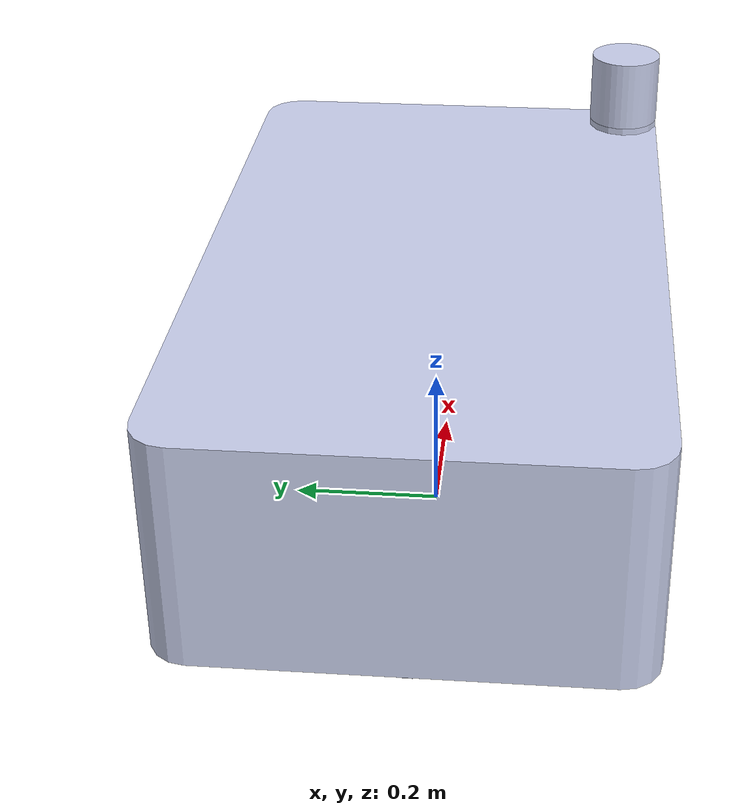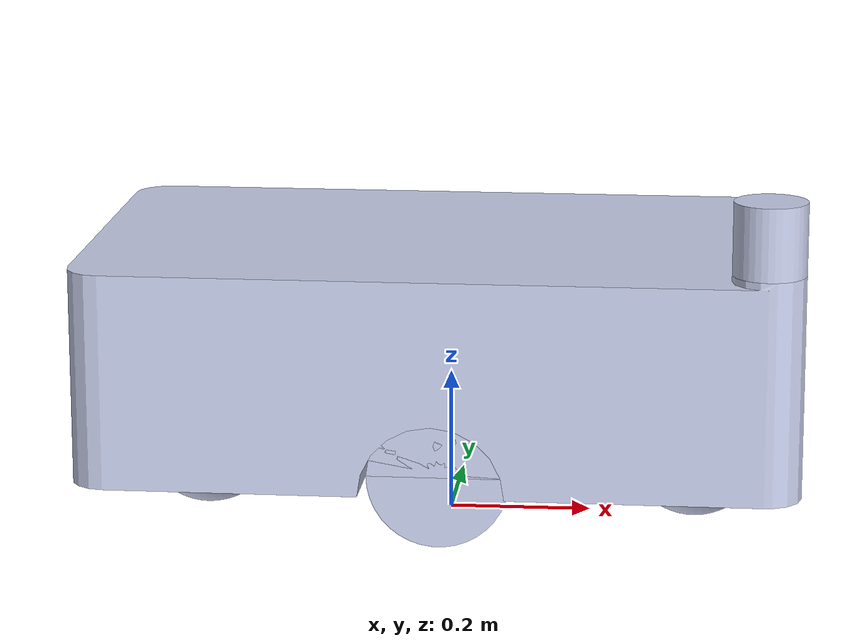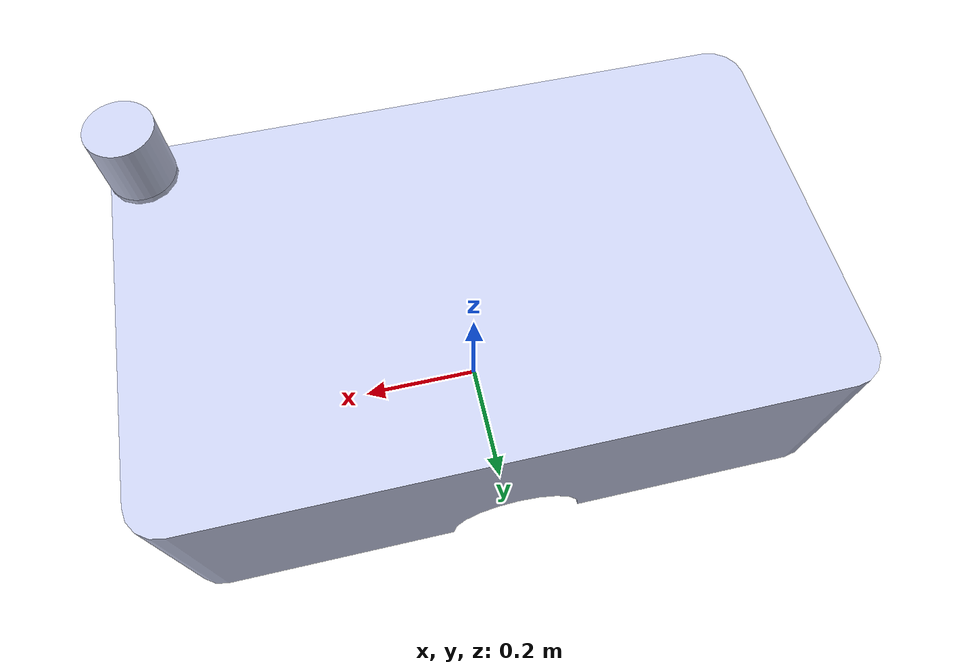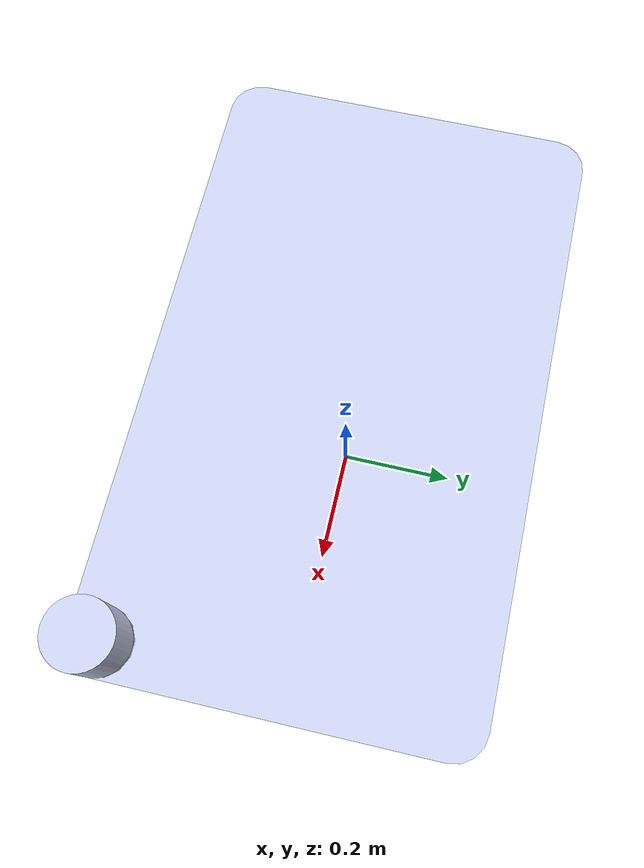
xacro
<?xml version="1.0" encoding="utf-8"?>
<robot name="my_agv" xmlns:xacro="http://www.ros.org/wiki/xacro">
  <xacro:include filename="$(find my_agv)/urdf/my_agv.gazebo.xacro"/>

  <link name="base_footprint"/>

  <joint name="base_joint" type="fixed">
    <parent link="base_footprint"/>
    <child link="base_link"/>
    <origin xyz="0.0 0.0 0.1" rpy="0 0 0"/>
  </joint>

  <link
    name="base_link">
    <inertial>
      <origin
        xyz="0.000205357488381168 -0.000114087493545167 0.154772210158345"
        rpy="0 0 0" />
      <mass
        value="172.104351448156" />
      <inertia
        ixx="6.3929434908259"
        ixy="0.00883169715336637"
        ixz="-0.0053094883604806"
        iyy="15.5817880289174"
        iyz="0.00294971575582209"
        izz="19.4765350338119" />
    </inertial>
    <visual>
      <origin
        xyz="0 0 0"
        rpy="0 0 0" />
      <geometry>
        <mesh
          filename="package://my_agv/meshes/base_link.STL" />
      </geometry>
      <material
        name="">
        <color
          rgba="0.792156862745098 0.819607843137255 0.933333333333333 1" />
      </material>
    </visual>
    <collision>
      <origin
        xyz="0 0 0"
        rpy="0 0 0" />
      <geometry>
        <mesh
          filename="package://my_agv/meshes/base_link.STL" />
      </geometry>
    </collision>
  </link>
  <link
    name="wheel_right_link">
    <inertial>
      <origin
        xyz="-1.94908591625968E-18 -7.34092456632638E-16 0.0500000000000003"
        rpy="0 0 0" />
      <mass
        value="3.14159265358979" />
      <inertia
        ixx="0.010471975511966"
        ixy="7.08713124779409E-34"
        ixz="4.70197740328895E-35"
        iyy="0.010471975511966"
        iyz="-3.74856813205645E-18"
        izz="0.015707963267949" />
    </inertial>
    <visual>
      <origin
        xyz="0 0 0"
        rpy="0 0 0" />
      <geometry>
        <mesh
          filename="package://my_agv/meshes/wheel_right_link.STL" />
      </geometry>
      <material
        name="">
        <color
          rgba="0.792156862745098 0.819607843137255 0.933333333333333 1" />
      </material>
    </visual>
    <collision>
      <origin
        xyz="0 0 0"
        rpy="0 0 0" />
      <geometry>
        <mesh
          filename="package://my_agv/meshes/wheel_right_link.STL" />
      </geometry>
    </collision>
  </link>
  <joint
    name="wheel_right_joint"
    type="continuous">
    <origin
      xyz="0 -0.2 0"
      rpy="1.5708 0 0" />
    <parent
      link="base_link" />
    <child
      link="wheel_right_link" />
    <axis
      xyz="0 0 1" />
  </joint>
  <link
    name="wheel_left_link">
    <inertial>
      <origin
        xyz="-1.94908591625968E-18 7.34092456632637E-16 -0.0500000000000003"
        rpy="0 0 0" />
      <mass
        value="3.14159265358979" />
      <inertia
        ixx="0.010471975511966"
        ixy="5.32443059626186E-35"
        ixz="4.70197740328914E-35"
        iyy="0.010471975511966"
        iyz="-3.74856813205645E-18"
        izz="0.015707963267949" />
    </inertial>
    <visual>
      <origin
        xyz="0 0 0"
        rpy="0 0 0" />
      <geometry>
        <mesh
          filename="package://my_agv/meshes/wheel_left_link.STL" />
      </geometry>
      <material
        name="">
        <color
          rgba="0.792156862745098 0.819607843137255 0.933333333333333 1" />
      </material>
    </visual>
    <collision>
      <origin
        xyz="0 0 0"
        rpy="0 0 0" />
      <geometry>
        <mesh
          filename="package://my_agv/meshes/wheel_left_link.STL" />
      </geometry>
    </collision>
  </link>
  <joint
    name="wheel_left_joint"
    type="continuous">
    <origin
      xyz="0 0.2 0"
      rpy="1.5708 0 0" />
    <parent
      link="base_link" />
    <child
      link="wheel_left_link" />
    <axis
      xyz="0 0 1" />
  </joint>
  <link
    name="caster_front_link">
    <inertial>
      <origin
        xyz="0 0 0"
        rpy="0 0 0" />
      <mass
        value="4.18879020478639" />
      <inertia
        ixx="0.0167551608191456"
        ixy="0"
        ixz="0"
        iyy="0.0167551608191456"
        iyz="0"
        izz="0.0167551608191456" />
    </inertial>
    <visual>
      <origin
        xyz="0 0 0"
        rpy="0 0 0" />
      <geometry>
        <mesh
          filename="package://my_agv/meshes/caster_front_link.STL" />
      </geometry>
      <material
        name="">
        <color
          rgba="0.792156862745098 0.819607843137255 0.933333333333333 1" />
      </material>
    </visual>
    <collision>
      <origin
        xyz="0 0 0"
        rpy="0 0 0" />
      <geometry>
        <mesh
          filename="package://my_agv/meshes/caster_front_link.STL" />
      </geometry>
    </collision>
  </link>
  <joint
    name="caster_front_joint"
    type="fixed">
    <origin
      xyz="0.35 0 0"
      rpy="0 0 0" />
    <parent
      link="base_link" />
    <child
      link="caster_front_link" />
    <axis
      xyz="0 0 1" />
  </joint>
  <link
    name="caster_rear_link">
    <inertial>
      <origin
        xyz="0 0 0"
        rpy="0 0 0" />
      <mass
        value="4.18879020478639" />
      <inertia
        ixx="0.0167551608191456"
        ixy="0"
        ixz="0"
        iyy="0.0167551608191456"
        iyz="0"
        izz="0.0167551608191456" />
    </inertial>
    <visual>
      <origin
        xyz="0 0 0"
        rpy="0 0 0" />
      <geometry>
        <mesh
          filename="package://my_agv/meshes/caster_rear_link.STL" />
      </geometry>
      <material
        name="">
        <color
          rgba="0.792156862745098 0.819607843137255 0.933333333333333 1" />
      </material>
    </visual>
    <collision>
      <origin
        xyz="0 0 0"
        rpy="0 0 0" />
      <geometry>
        <mesh
          filename="package://my_agv/meshes/caster_rear_link.STL" />
      </geometry>
    </collision>
  </link>
  <joint
    name="caster_rear_joint"
    type="fixed">
    <origin
      xyz="-0.35 0 0"
      rpy="0 0 0" />
    <parent
      link="base_link" />
    <child
      link="caster_rear_link" />
    <axis
      xyz="0 0 1" />
  </joint>
  <link
    name="base_scan">
    <inertial>
      <origin
        xyz="-5.55111512312578E-17 -5.55111512312578E-17 0.05"
        rpy="0 0 0" />
      <mass
        value="0.785398163397448" />
      <inertia
        ixx="0.00114537232162128"
        ixy="3.74939945665464E-36"
        ixz="-4.70197740328915E-36"
        iyy="0.00114537232162128"
        iyz="-3.7943922501345E-36"
        izz="0.00098174770424681" />
    </inertial>
    <visual>
      <origin
        xyz="0 0 0"
        rpy="0 0 0" />
      <geometry>
        <mesh
          filename="package://my_agv/meshes/base_scan.STL" />
      </geometry>
      <material
        name="">
        <color
          rgba="0.792156862745098 0.819607843137255 0.933333333333333 1" />
      </material>
    </visual>
    <collision>
      <origin
        xyz="0 0 0"
        rpy="0 0 0" />
      <geometry>
        <mesh
          filename="package://my_agv/meshes/base_scan.STL" />
      </geometry>
    </collision>
  </link>
  <joint
    name="base_scan_joint"
    type="fixed">
    <origin
      xyz="0.45 -0.25 0.31"
      rpy="0 0 0" />
    <parent
      link="base_link" />
    <child
      link="base_scan" />
    <axis
      xyz="0 0 0" />
  </joint>
</robot>
